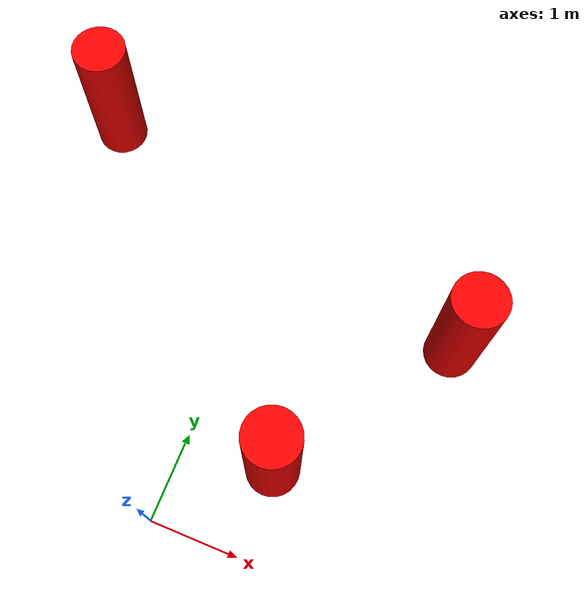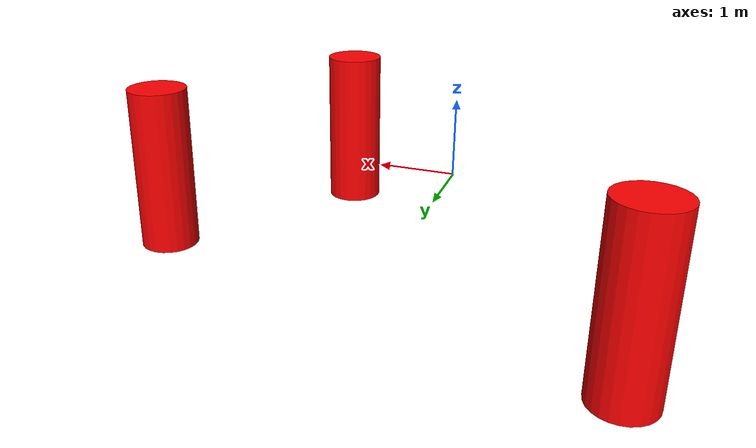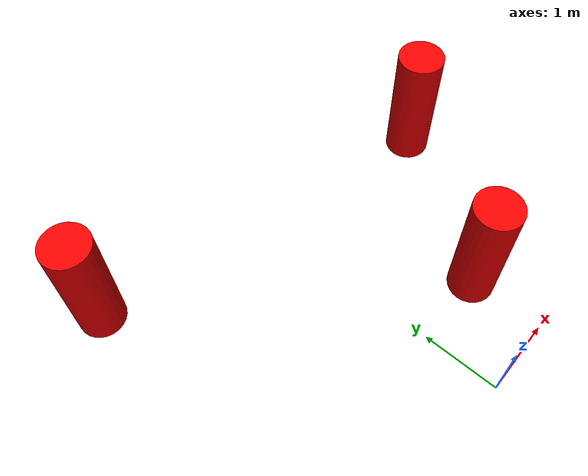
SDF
<sdf version='1.7'>
  <world name='default'>
    <!-- 动态障碍物：参考 generated_env.world 的格式 -->
    <!-- 障碍物1：从 (-2.38, 4.25) 到 (-2.38, -5.49) - 保持不变 -->
    <model name='dynamic_cylinder_0_0.6_0.6_1.7'>
      <static>true</static>
      <pose>-2.38 4.25 0.85 0 0 0</pose> <!-- X, Y, Z, Roll, Pitch, Yaw -->
      <link name='link'>
        <visual name='visual'>
          <geometry>
            <cylinder>
              <radius>0.3</radius>
              <length>1.7</length>
            </cylinder>
          </geometry>
          <material>
            <ambient>1 0 0 1</ambient> <!-- Red color -->
            <diffuse>1 0 0 1</diffuse> <!-- Red color -->
            <specular>0.5 0.5 0.5 1</specular> <!-- Specular highlight -->
          </material>
        </visual>
      </link>
      <plugin name="obstacle_motion" filename="libobstaclePathPlugin.so">
        <orientation>false</orientation>
        <loop>1</loop>
        <velocity>1.0</velocity>
        <path>
          <waypoint>-2.38 3.25 0.85</waypoint>
          <waypoint>-2.38 -2.49 0.85</waypoint>
          <waypoint>-2.38 3.25 0.85</waypoint>
          <waypoint>-2.38 -2.49 0.85</waypoint>
        </path>
      </plugin>
    </model>

    <!-- 障碍物2：从 (2.38, 3) 到 (-3, 3) -->
    <model name='dynamic_cylinder_1_0.6_0.6_1.7'>
      <static>true</static>
      <pose>2.38 3 0.85 0 0 0</pose> <!-- X, Y, Z, Roll, Pitch, Yaw -->
      <link name='link'>
        <visual name='visual'>
          <geometry>
            <cylinder>
              <radius>0.3</radius>
              <length>1.7</length>
            </cylinder>
          </geometry>
          <material>
            <ambient>1 0 0 1</ambient> <!-- Red color -->
            <diffuse>1 0 0 1</diffuse> <!-- Red color -->
            <specular>0.5 0.5 0.5 1</specular> <!-- Specular highlight -->
          </material>
        </visual>
      </link>
      <plugin name="obstacle_motion" filename="libobstaclePathPlugin.so">
        <orientation>false</orientation>
        <loop>1</loop>
        <velocity>1.0</velocity>
        <path>
          <waypoint>2.38 3 0.85</waypoint>
          <waypoint>-3 3 0.85</waypoint>
          <waypoint>2.38 3 0.85</waypoint>
          <waypoint>-3 3 0.85</waypoint>
        </path>
      </plugin>
    </model>

    <!-- 障碍物3：从 (1, 1) 到 (5, -4) -->
    <model name='dynamic_cylinder_2_0.6_0.6_1.7'>
      <static>true</static>
      <pose>1 1 0.85 0 0 0</pose> <!-- X, Y, Z, Roll, Pitch, Yaw -->
      <link name='link'>
        <visual name='visual'>
          <geometry>
            <cylinder>
              <radius>0.3</radius>
              <length>1.7</length>
            </cylinder>
          </geometry>
          <material>
            <ambient>1 0 0 1</ambient> <!-- Red color -->
            <diffuse>1 0 0 1</diffuse> <!-- Red color -->
            <specular>0.5 0.5 0.5 1</specular> <!-- Specular highlight -->
          </material>
        </visual>
      </link>
      <plugin name="obstacle_motion" filename="libobstaclePathPlugin.so">
        <orientation>false</orientation>
        <loop>1</loop>
        <velocity>1.0</velocity>
        <path>
          <waypoint>1 1 0.85</waypoint>
          <waypoint>5 -4 0.85</waypoint>
          <waypoint>1 1 0.85</waypoint>
          <waypoint>5 -4 0.85</waypoint>
        </path>
      </plugin>
    </model>

    <light name='sun' type='directional'>
      <cast_shadows>1</cast_shadows>
      <pose>0 0 10 0 -0 0</pose>
      <diffuse>0.8 0.8 0.8 1</diffuse>
      <specular>0.2 0.2 0.2 1</specular>
      <attenuation>
        <range>1000</range>
        <constant>0.9</constant>
        <linear>0.01</linear>
        <quadratic>0.001</quadratic>
      </attenuation>
      <direction>-0.5 0.1 -0.9</direction>
      <spot>
        <inner_angle>0</inner_angle>
        <outer_angle>0</outer_angle>
        <falloff>0</falloff>
      </spot>
    </light>

    <model name='ground_plane'>
      <static>1</static>
      <link name='link'>
        <collision name='collision'>
          <geometry>
            <plane>
              <normal>0 0 1</normal>
              <size>100 100</size>
            </plane>
          </geometry>
        </collision>
      </link>
    </model>

    <physics type='ode'>
      <max_step_size>0.001</max_step_size>
      <real_time_factor>1</real_time_factor>
      <real_time_update_rate>1000</real_time_update_rate>
    </physics>

    <scene>
      <ambient>0.4 0.4 0.4 1</ambient>
      <background>0.7 0.7 0.7 1</background>
      <shadows>1</shadows>
    </scene>

    <gui fullscreen='0'>
      <camera name='user_camera'>
        <pose>6.39292 -16.0551 24.6198 0 0.913797 2.1162</pose>
        <view_controller>orbit</view_controller>
        <projection_type>perspective</projection_type>
      </camera>
    </gui>
  </world>
</sdf>
